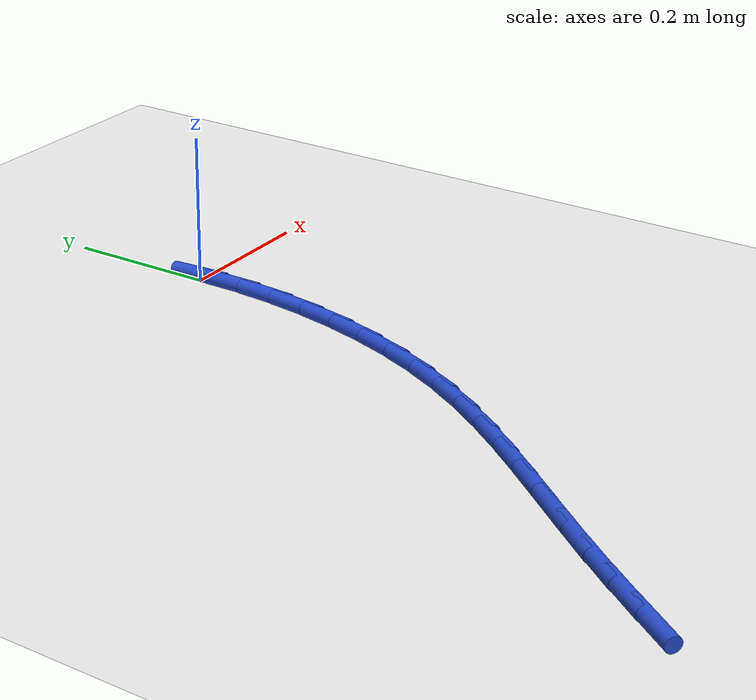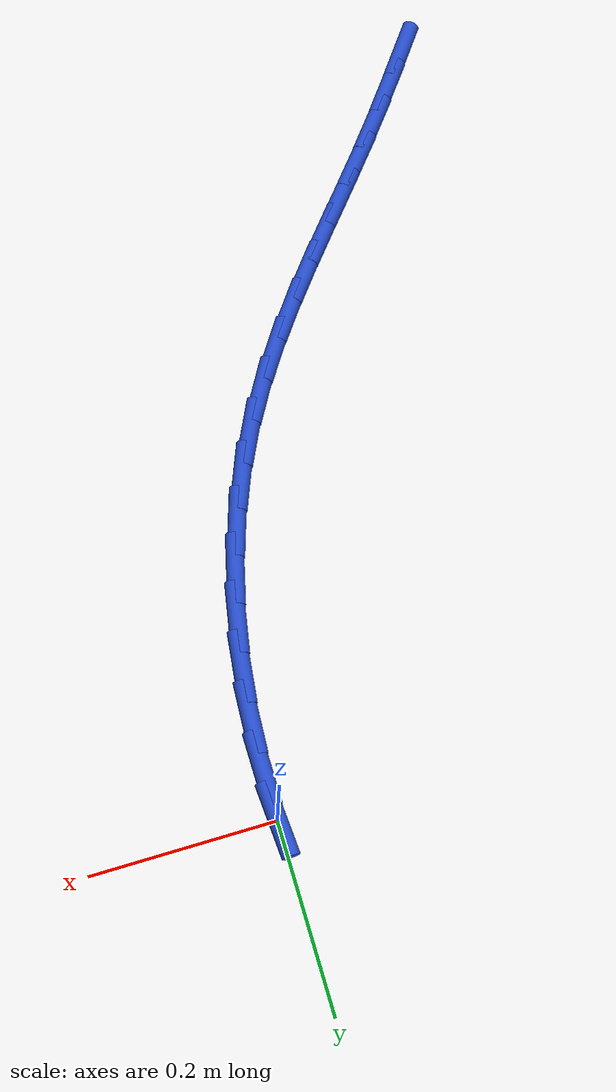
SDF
<sdf version="1.6">
 <world name="default">
  <model name="ground_plane">
   <static>1</static>
   <link name="link">
    <collision name="collision">
     <geometry><plane><normal>0 0 1</normal><size>100 100</size></plane></geometry>
     <surface><friction><ode><mu>100</mu><mu2>50</mu2></ode></friction></surface>
    </collision>
    <visual name="visual">
     <cast_shadows>0</cast_shadows>
     <geometry><plane><normal>0 0 1</normal><size>100 100</size></plane></geometry>
     <material>
      <script><uri>file://media/materials/scripts/gazebo.material</uri><name>Gazebo/WhiteGlow</name></script>
     </material>
    </visual>
   </link>
  </model>
  <model name="line">
   <link name="link_0">
    <pose>3.2959746043559335e-17 6.938893903907228e-17 0.01 0 1.57 -1.501933321080894</pose>
    <collision name="collision">
     <geometry><cylinder><radius>0.01</radius><length>0.08</length></cylinder></geometry>
    </collision>
    <visual name="visual">
     <material>
      <script><name>Gazebo/Blue</name><uri>file://media/materials/scripts/gazebo.material</uri></script>
     </material>
     <geometry><cylinder><radius>0.01</radius><length>0.08</length></cylinder></geometry>
    </visual>
   </link>
   <link name="link_132">
    <pose>-0.41204163366473584 -0.8529650222558572 0.01 0 1.57 0.9452998304320918</pose>
    <collision name="collision">
     <geometry><cylinder><radius>0.01</radius><length>0.08</length></cylinder></geometry>
    </collision>
    <visual name="visual">
     <material>
      <script><name>Gazebo/Blue</name><uri>file://media/materials/scripts/gazebo.material</uri></script>
     </material>
     <geometry><cylinder><radius>0.01</radius><length>0.08</length></cylinder></geometry>
    </visual>
   </link>
   <link name="link_133">
    <pose>-0.3792506163950489 -0.8075631711039224 0.01 0 1.57 0.9310118595254443</pose>
    <collision name="collision">
     <geometry><cylinder><radius>0.01</radius><length>0.08</length></cylinder></geometry>
    </collision>
    <visual name="visual">
     <material>
      <script><name>Gazebo/Blue</name><uri>file://media/materials/scripts/gazebo.material</uri></script>
     </material>
     <geometry><cylinder><radius>0.01</radius><length>0.08</length></cylinder></geometry>
    </visual>
   </link>
   <link name="link_134">
    <pose>-0.3460295689767316 -0.762923757302866 0.01 0 1.57 0.9107714986623665</pose>
    <collision name="collision">
     <geometry><cylinder><radius>0.01</radius><length>0.08</length></cylinder></geometry>
    </collision>
    <visual name="visual">
     <material>
      <script><name>Gazebo/Blue</name><uri>file://media/materials/scripts/gazebo.material</uri></script>
     </material>
     <geometry><cylinder><radius>0.01</radius><length>0.08</length></cylinder></geometry>
    </visual>
   </link>
   <link name="link_135">
    <pose>-0.31220839677723206 -0.7193478978739718 0.01 0 1.57 0.8937967581774646</pose>
    <collision name="collision">
     <geometry><cylinder><radius>0.01</radius><length>0.08</length></cylinder></geometry>
    </collision>
    <visual name="visual">
     <material>
      <script><name>Gazebo/Blue</name><uri>file://media/materials/scripts/gazebo.material</uri></script>
     </material>
     <geometry><cylinder><radius>0.01</radius><length>0.08</length></cylinder></geometry>
    </visual>
   </link>
   <link name="link_136">
    <pose>-0.2779712799758806 -0.6767490995268163 0.01 0 1.57 0.8885840920012329</pose>
    <collision name="collision">
     <geometry><cylinder><radius>0.01</radius><length>0.08</length></cylinder></geometry>
    </collision>
    <visual name="visual">
     <material>
      <script><name>Gazebo/Blue</name><uri>file://media/materials/scripts/gazebo.material</uri></script>
     </material>
     <geometry><cylinder><radius>0.01</radius><length>0.08</length></cylinder></geometry>
    </visual>
   </link>
   <link name="link_137">
    <pose>-0.24381380188410262 -0.634700164351155 0.01 0 1.57 0.8957449925322027</pose>
    <collision name="collision">
     <geometry><cylinder><radius>0.01</radius><length>0.08</length></cylinder></geometry>
    </collision>
    <visual name="visual">
     <material>
      <script><name>Gazebo/Blue</name><uri>file://media/materials/scripts/gazebo.material</uri></script>
     </material>
     <geometry><cylinder><radius>0.01</radius><length>0.08</length></cylinder></geometry>
    </visual>
   </link>
   <link name="link_138">
    <pose>-0.21024215046985503 -0.5927622919347132 0.01 0 1.57 0.9155820537203038</pose>
    <collision name="collision">
     <geometry><cylinder><radius>0.01</radius><length>0.08</length></cylinder></geometry>
    </collision>
    <visual name="visual">
     <material>
      <script><name>Gazebo/Blue</name><uri>file://media/materials/scripts/gazebo.material</uri></script>
     </material>
     <geometry><cylinder><radius>0.01</radius><length>0.08</length></cylinder></geometry>
    </visual>
   </link>
   <link name="link_139">
    <pose>-0.17776251370109294 -0.5504966818652148 0.01 0 1.57 0.9483316840581417</pose>
    <collision name="collision">
     <geometry><cylinder><radius>0.01</radius><length>0.08</length></cylinder></geometry>
    </collision>
    <visual name="visual">
     <material>
      <script><name>Gazebo/Blue</name><uri>file://media/materials/scripts/gazebo.material</uri></script>
     </material>
     <geometry><cylinder><radius>0.01</radius><length>0.08</length></cylinder></geometry>
    </visual>
   </link>
   <link name="link_140">
    <pose>-0.14688107954577379 -0.5074645337303861 0.01 0 1.57 0.9940608209995685</pose>
    <collision name="collision">
     <geometry><cylinder><radius>0.01</radius><length>0.08</length></cylinder></geometry>
    </collision>
    <visual name="visual">
     <material>
      <script><name>Gazebo/Blue</name><uri>file://media/materials/scripts/gazebo.material</uri></script>
     </material>
     <geometry><cylinder><radius>0.01</radius><length>0.08</length></cylinder></geometry>
    </visual>
   </link>
   <link name="link_141">
    <pose>-0.11810403597185272 -0.4632270471179512 0.01 0 1.57 1.0524985337328217</pose>
    <collision name="collision">
     <geometry><cylinder><radius>0.01</radius><length>0.08</length></cylinder></geometry>
    </collision>
    <visual name="visual">
     <material>
      <script><name>Gazebo/Blue</name><uri>file://media/materials/scripts/gazebo.material</uri></script>
     </material>
     <geometry><cylinder><radius>0.01</radius><length>0.08</length></cylinder></geometry>
    </visual>
   </link>
   <link name="link_142">
    <pose>-0.09193757094728666 -0.4173454216156355 0.01 0 1.57 1.1217018792644058</pose>
    <collision name="collision">
     <geometry><cylinder><radius>0.01</radius><length>0.08</length></cylinder></geometry>
    </collision>
    <visual name="visual">
     <material>
      <script><name>Gazebo/Blue</name><uri>file://media/materials/scripts/gazebo.material</uri></script>
     </material>
     <geometry><cylinder><radius>0.01</radius><length>0.08</length></cylinder></geometry>
    </visual>
   </link>
   <link name="link_143">
    <pose>-0.06885094018293694 -0.36944175486187514 0.01 0 1.57 1.1918871274085323</pose>
    <collision name="collision">
     <geometry><cylinder><radius>0.01</radius><length>0.08</length></cylinder></geometry>
    </collision>
    <visual name="visual">
     <material>
      <script><name>Gazebo/Blue</name><uri>file://media/materials/scripts/gazebo.material</uri></script>
     </material>
     <geometry><cylinder><radius>0.01</radius><length>0.08</length></cylinder></geometry>
    </visual>
   </link>
   <link name="link_144">
    <pose>-0.04901713591273418 -0.319626656967955 0.01 0 1.57 1.2591778568136829</pose>
    <collision name="collision">
     <geometry><cylinder><radius>0.01</radius><length>0.08</length></cylinder></geometry>
    </collision>
    <visual name="visual">
     <material>
      <script><name>Gazebo/Blue</name><uri>file://media/materials/scripts/gazebo.material</uri></script>
     </material>
     <geometry><cylinder><radius>0.01</radius><length>0.08</length></cylinder></geometry>
    </visual>
   </link>
   <link name="link_145">
    <pose>-0.032466660380443955 -0.26824569153377453 0.01 0 1.57 1.3242506586239575</pose>
    <collision name="collision">
     <geometry><cylinder><radius>0.01</radius><length>0.08</length></cylinder></geometry>
    </collision>
    <visual name="visual">
     <material>
      <script><name>Gazebo/Blue</name><uri>file://media/materials/scripts/gazebo.material</uri></script>
     </material>
     <geometry><cylinder><radius>0.01</radius><length>0.08</length></cylinder></geometry>
    </visual>
   </link>
   <link name="link_146">
    <pose>-0.019229107477846428 -0.21564591995193352 0.01 0 1.57 1.3878138236279352</pose>
    <collision name="collision">
     <geometry><cylinder><radius>0.01</radius><length>0.08</length></cylinder></geometry>
    </collision>
    <visual name="visual">
     <material>
      <script><name>Gazebo/Blue</name><uri>file://media/materials/scripts/gazebo.material</uri></script>
     </material>
     <geometry><cylinder><radius>0.01</radius><length>0.08</length></cylinder></geometry>
    </visual>
   </link>
   <link name="link_147">
    <pose>-0.009334071096722565 -0.16217440361503396 0.01 0 1.57 1.450575454340355</pose>
    <collision name="collision">
     <geometry><cylinder><radius>0.01</radius><length>0.08</length></cylinder></geometry>
    </collision>
    <visual name="visual">
     <material>
      <script><name>Gazebo/Blue</name><uri>file://media/materials/scripts/gazebo.material</uri></script>
     </material>
     <geometry><cylinder><radius>0.01</radius><length>0.08</length></cylinder></geometry>
    </visual>
   </link>
   <link name="link_148">
    <pose>-0.002811145128853167 -0.10817820391567826 0.01 0 1.57 1.513245007425046</pose>
    <collision name="collision">
     <geometry><cylinder><radius>0.01</radius><length>0.08</length></cylinder></geometry>
    </collision>
    <visual name="visual">
     <material>
      <script><name>Gazebo/Blue</name><uri>file://media/materials/scripts/gazebo.material</uri></script>
     </material>
     <geometry><cylinder><radius>0.01</radius><length>0.08</length></cylinder></geometry>
    </visual>
   </link>
   <link name="link_149">
    <pose>0.0003100765339813013 -0.05400438224646582 0.01 0 1.57 -1.5650546978063524</pose>
    <collision name="collision">
     <geometry><cylinder><radius>0.01</radius><length>0.08</length></cylinder></geometry>
    </collision>
    <visual name="visual">
     <material>
      <script><name>Gazebo/Blue</name><uri>file://media/materials/scripts/gazebo.material</uri></script>
     </material>
     <geometry><cylinder><radius>0.01</radius><length>0.08</length></cylinder></geometry>
    </visual>
   </link>
  </model>
 </world>
</sdf>
